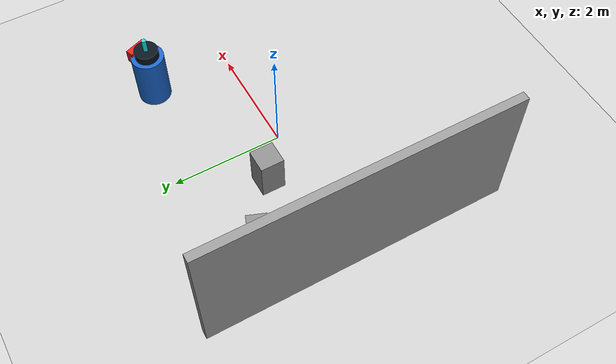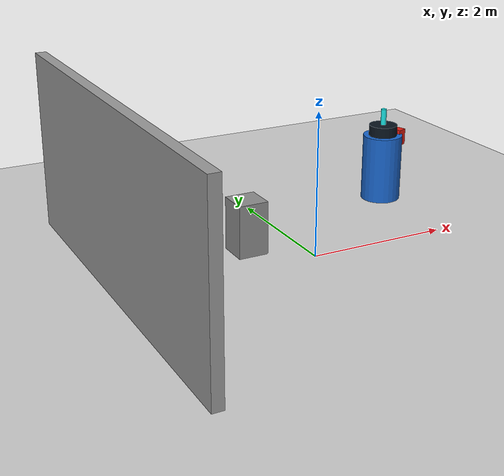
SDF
<sdf version="1.7">
 <world name="default">
  <plugin name="socnav_plugin" filename="libSocNavPlugin.so">
   <robot_name>robot</robot_name>
   <trajectory_file>/home/hunav_gz_classic_ws/SocNav3_trajectories/src6/000003872.json</trajectory_file>
   <human_slots>1</human_slots>
   <goal_angle_mesh>
    <angle_threshold>2.51231349095</angle_threshold>
    <uri>/home/hunav_gz_classic_ws/src/socnav_gazebo_reproducer/meshes/000003872_goal_angle_00.stl</uri>
   </goal_angle_mesh>
  </plugin>
  <light name="sun" type="directional">
   <pose>0 0 10 0 -0 0</pose>
   <diffuse>0.8 0.8 0.8 1</diffuse>
   <specular>0.2 0.2 0.2 1</specular>
   <attenuation>
    <range>1000</range>
    <constant>0.9</constant>
    <linear>0.01</linear>
    <quadratic>0.001</quadratic>
   </attenuation>
   <direction>-0.5 0.1 -0.9</direction>
   <spot><inner_angle>0</inner_angle><outer_angle>0</outer_angle><falloff>0</falloff></spot>
  </light>
  <model name="ground_plane">
   <static>1</static>
   <link name="link">
    <collision name="collision">
     <geometry><plane><normal>0 0 1</normal><size>100 100</size></plane></geometry>
     <surface><friction><ode><mu>100</mu><mu2>50</mu2></ode></friction></surface>
    </collision>
    <visual name="visual">
     <cast_shadows>0</cast_shadows>
     <geometry><plane><normal>0 0 1</normal><size>100 100</size></plane></geometry>
     <material>
      <script><uri>file://media/materials/scripts/kitchen.material</uri><name>Kitchen/CounterTop_H</name></script>
     </material>
    </visual>
   </link>
  </model>
  <gravity>0 0 -9.8</gravity>
  <magnetic_field>6e-06 2.3e-05 -4.2e-05</magnetic_field>
  <atmosphere type="adiabatic"/>
  <physics type="ode">
   <max_step_size>0.001</max_step_size>
   <real_time_factor>1</real_time_factor>
   <real_time_update_rate>1000</real_time_update_rate>
  </physics>
  <scene><ambient>0.4 0.4 0.4 1</ambient><background>0.7 0.7 0.7 1</background><shadows>1</shadows></scene>
  <audio><device>default</device></audio>
  <spherical_coordinates>
   <surface_model>EARTH_WGS84</surface_model>
   <latitude_deg>0</latitude_deg>
   <longitude_deg>0</longitude_deg>
   <elevation>0</elevation>
   <heading_deg>0</heading_deg>
  </spherical_coordinates>
  <model name="robot">
   <pose>2.039861609964903 1.482895352929031 0.5 0 0 0.3656386934451484</pose>
   <link name="link">
    <collision name="collision">
     <geometry><cylinder><radius>0.29362101683314007</radius><length>1.0</length></cylinder></geometry>
    </collision>
    <visual name="visual">
     <geometry><cylinder><radius>0.29362101683314007</radius><length>1.0</length></cylinder></geometry>
     <material><ambient>0.1 0.4 0.8 1</ambient><diffuse>0.1 0.4 0.8 1</diffuse></material>
    </visual>
    <visual name="robot_top">
     <pose>0 0 0.58 0 0 0</pose>
     <geometry><cylinder><radius>0.21140713211986084</radius><length>0.16</length></cylinder></geometry>
     <material><ambient>0.04 0.08 0.12 1</ambient><diffuse>0.04 0.08 0.12 1</diffuse></material>
    </visual>
    <visual name="robot_front">
     <pose>0.24664165413983766 0 0.44 0 0 0</pose>
     <geometry><box><size>0.14093808807990724 0.3758349015464193 0.24</size></box></geometry>
     <material><ambient>0.9 0.12 0.08 1</ambient><diffuse>0.9 0.12 0.08 1</diffuse></material>
    </visual>
    <visual name="robot_sensor">
     <pose>0 0 0.78 0 0 0</pose>
     <geometry><cylinder><radius>0.041106942356639614</radius><length>0.24</length></cylinder></geometry>
     <material><ambient>0.1 0.9 0.9 1</ambient><diffuse>0.1 0.9 0.9 1</diffuse></material>
    </visual>
   </link>
  </model>
  <model name="static_object_0">
   <static>true</static>
   <pose>-1.7169908993607637 1.2793522193974338 0.375 0 0 -1.940823720607139</pose>
   <link name="link">
    <collision name="collision"><geometry><box><size>0.35 0.18 0.75</size></box></geometry></collision>
    <visual name="visual">
     <geometry><box><size>0.35 0.18 0.75</size></box></geometry>
     <material><ambient>0.55 0.55 0.55 1</ambient><diffuse>0.55 0.55 0.55 1</diffuse></material>
    </visual>
   </link>
  </model>
  <model name="static_object_2">
   <static>true</static>
   <pose>-0.7335886554885369 0.5803707741290585 0.375 0 0 0</pose>
   <link name="link">
    <collision name="collision">
     <geometry><box><size>0.4227883034427297 0.4227883034427297 0.75</size></box></geometry>
    </collision>
    <visual name="visual">
     <geometry><box><size>0.4227883034427297 0.4227883034427297 0.75</size></box></geometry>
     <material><ambient>0.55 0.55 0.55 1</ambient><diffuse>0.55 0.55 0.55 1</diffuse></material>
    </visual>
   </link>
  </model>
  <model name="simple_world_test">
   <link name="Wall_0">
    <collision name="Wall_0_Collision">
     <geometry><box><size>5.529202272759388 0.15 2.5</size></box></geometry>
     <pose>0 0 1.25 0 -0 0</pose>
    </collision>
    <visual name="Wall_0_Visual">
     <pose>0 0 1.25 0 -0 0</pose>
     <geometry><box><size>5.529202272759388 0.15 2.5</size></box></geometry>
     <material>
      <script><uri>file://media/materials/scripts/gazebo.material</uri><name>Gazebo/Grey</name></script>
      <ambient>1 1 1 1</ambient>
     </material>
     <meta><layer>0</layer></meta>
    </visual>
    <pose>-2.7546011363796943 0.0 0 0 -0 1.5707963267948966</pose>
   </link>
   <static>1</static>
  </model>
 </world>
</sdf>
